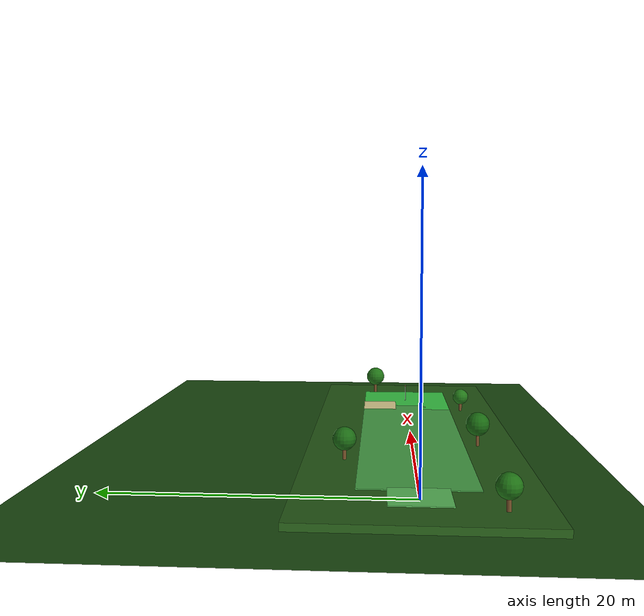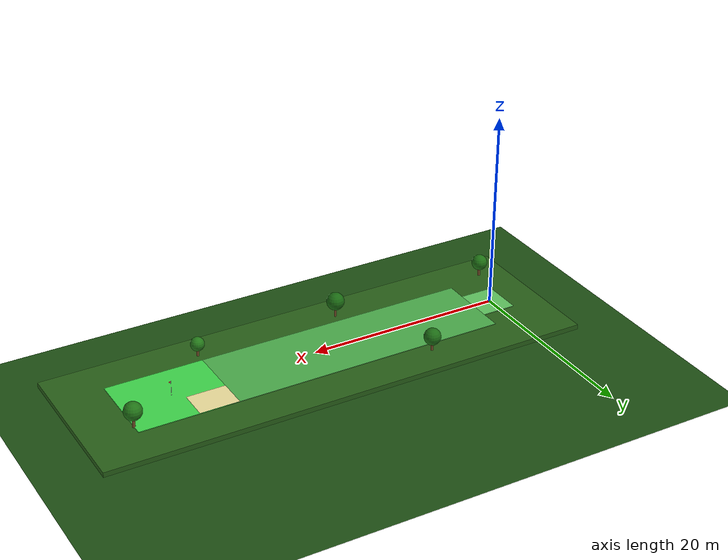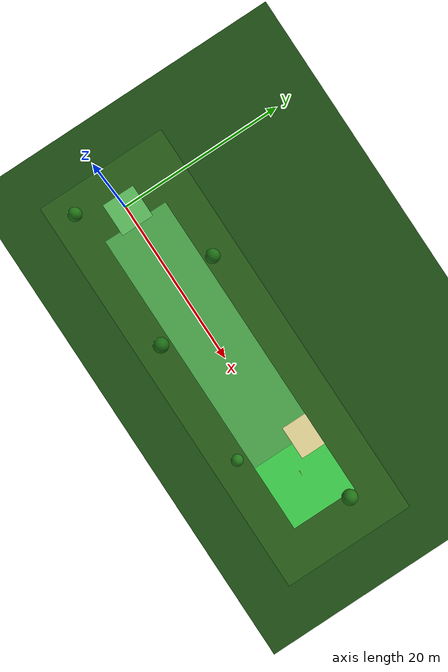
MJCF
<mujoco model="course1_straight_shot">
  <option timestep="0.0005" gravity="0 0 -9.81" integrator="Euler">
    <flag contact="enable"/>
  </option>

  <default>
    <geom condim="3" friction="0.8 0.005 0.0001"/>
  </default>

  <worldbody>

    <!-- ============ ROUGH BASE ============ -->
    <geom name="rough_base" type="box" pos="20 0 -0.27" size="25 8 0.25"
          rgba="0.16 0.38 0.10 1" friction="0.8 0.02 0.0005"/>

    <!-- ============ TEE BOX ============ -->
    <geom name="tee_box" type="box" pos="0.5 0 -0.22" size="2 2 0.27"
          rgba="0.38 0.78 0.38 1" friction="0.4 0.005 0.0001"/>
    <geom name="tee_marker" type="cylinder" pos="0.05 0 0.06" size="0.05 0.005"
          rgba="0.95 0.25 0.25 1" contype="0" conaffinity="0"/>

    <!-- ============ FAIRWAY ============ -->
    <geom name="fairway" type="box" pos="17 0 -0.22" size="15 4 0.27"
          rgba="0.30 0.68 0.30 1" friction="0.4 0.005 0.0001"/>

    <!-- ============ GREEN ============ -->
    <geom name="green" type="box" pos="35 0 -0.22" size="5 4 0.27"
          rgba="0.25 0.85 0.30 1" friction="0.15 0.002 0.00005"/>

    <!-- ============ SAND BUNKER ============ -->
    <geom name="sand1" type="box" pos="32 2.5 -0.22" size="2 1.5 0.28"
          rgba="0.94 0.88 0.62 1" friction="1.2 0.05 0.001"/>

    <!-- ============ FALLBACK GROUND ============ -->
    <geom name="ground" type="plane" size="100 100 0.1" pos="0 0 -0.52"
          rgba="0.12 0.32 0.08 1" friction="0.8 0.02 0.0005"/>

    <!-- ============ TREES ============ -->
    <body name="tree1" pos="-2 -5 0">
      <geom type="cylinder" pos="0 0 0.6" size="0.15 0.6" rgba="0.45 0.30 0.15 1" contype="0" conaffinity="0"/>
      <geom type="sphere" pos="0 0 1.5" size="0.8" rgba="0.12 0.45 0.08 1" contype="0" conaffinity="0"/>
    </body>
    <body name="tree2" pos="15 -5 0">
      <geom type="cylinder" pos="0 0 0.7" size="0.12 0.7" rgba="0.45 0.30 0.15 1" contype="0" conaffinity="0"/>
      <geom type="sphere" pos="0 0 1.7" size="0.9" rgba="0.10 0.42 0.07 1" contype="0" conaffinity="0"/>
    </body>
    <body name="tree3" pos="30 -5 0">
      <geom type="cylinder" pos="0 0 0.5" size="0.13 0.5" rgba="0.45 0.30 0.15 1" contype="0" conaffinity="0"/>
      <geom type="sphere" pos="0 0 1.3" size="0.7" rgba="0.14 0.48 0.10 1" contype="0" conaffinity="0"/>
    </body>
    <body name="tree4" pos="10 5 0">
      <geom type="cylinder" pos="0 0 0.6" size="0.14 0.6" rgba="0.45 0.30 0.15 1" contype="0" conaffinity="0"/>
      <geom type="sphere" pos="0 0 1.5" size="0.85" rgba="0.11 0.43 0.08 1" contype="0" conaffinity="0"/>
    </body>
    <body name="tree5" pos="40 3 0">
      <geom type="cylinder" pos="0 0 0.7" size="0.15 0.7" rgba="0.45 0.30 0.15 1" contype="0" conaffinity="0"/>
      <geom type="sphere" pos="0 0 1.7" size="0.9" rgba="0.13 0.46 0.09 1" contype="0" conaffinity="0"/>
    </body>

    <!-- ============ HOLE ============ -->
    <body name="hole" pos="35.0 0.0 0.06">
      <geom name="hole_circle" type="cylinder" size="0.054 0.002"
            rgba="0.05 0.05 0.05 1" contype="0" conaffinity="0"/>
      <geom name="flag_pole" type="cylinder" pos="0 0 0.75" size="0.015 0.75"
            rgba="0.85 0.85 0.85 1" contype="0" conaffinity="0"/>
      <geom name="flag" type="box" pos="0.08 0 1.40" size="0.10 0.005 0.06"
            rgba="0.95 0.15 0.15 1" contype="0" conaffinity="0"/>
    </body>

    <!-- ============ LIGHTS ============ -->
    <light pos="18 0 20" dir="0 0 -1" diffuse="1.0 1.0 0.95" ambient="0.4 0.4 0.4"/>
    <light pos="35 0 15" dir="0 0 -1" diffuse="0.5 0.5 0.5"/>

    <!-- ============ GOLF BALL ============ -->
    <body name="ball" pos="0.05 0 0.0214">
      <freejoint name="ball_joint"/>
      <geom name="ball_geom" type="sphere" size="0.0214"
            rgba="1 1 1 1" mass="0.0459"
            friction="0.5 0.005 0.0001"/>
    </body>
  </worldbody>

  <sensor>
    <framepos name="ball_pos" objtype="body" objname="ball"/>
    <framelinvel name="ball_vel" objtype="body" objname="ball"/>
  </sensor>
</mujoco>
